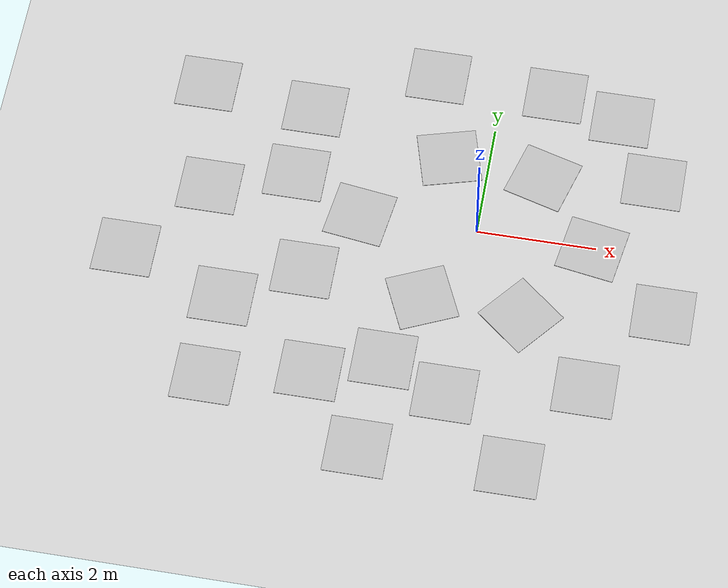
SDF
<sdf version="1.4">
 <world name="default">
  <light name="sun" type="directional">
   <pose>0 0 10 0 -0 0</pose>
   <diffuse>0.8 0.8 0.8 1</diffuse>
   <specular>0.1 0.1 0.1 1</specular>
   <attenuation>
    <range>1000</range>
    <constant>0.9</constant>
    <linear>0.01</linear>
    <quadratic>0.001</quadratic>
   </attenuation>
   <direction>-0.5 0.5 -1</direction>
  </light>
  <model name="ground_plane">
   <static>1</static>
   <link name="link">
    <collision name="collision">
     <geometry><plane><normal>0 0 1</normal><size>100 100</size></plane></geometry>
     <surface><friction><ode><mu>100</mu><mu2>50</mu2></ode></friction></surface>
    </collision>
    <visual name="visual">
     <cast_shadows>0</cast_shadows>
     <geometry><plane><normal>0 0 1</normal><size>100 100</size></plane></geometry>
     <material>
      <script><uri>file://media/materials/scripts/gazebo.material</uri><name>Gazebo/Grey</name></script>
     </material>
    </visual>
   </link>
  </model>
  <gravity>0 0 -9.8</gravity>
  <magnetic_field>6e-06 2.3e-05 -4.2e-05</magnetic_field>
  <atmosphere type="adiabatic"/>
  <physics name="default_physics" default="0" type="ode">
   <max_step_size>0.001</max_step_size>
   <real_time_factor>1</real_time_factor>
   <real_time_update_rate>1000</real_time_update_rate>
  </physics>
  <scene><ambient>0.4 0.4 0.4 1</ambient><background>0.7 0.7 0.7 1</background><shadows>1</shadows></scene>
  <model name="april_tag0_2">
   <static>1</static>
   <link name="plane">
    <visual name="april_tag_texture">
     <geometry><box><size>1 1 0.01</size></box></geometry>
     <material>
      <script>
       <uri>model://april_tag0/materials/scripts</uri>
       <uri>model://april_tag0/materials/textures</uri>
       <name>AprilTag/M0</name>
      </script>
     </material>
    </visual>
   </link>
   <pose>-0.691396 1.3524 0 0 -0 0.271934</pose>
  </model>
  <model name="april_tag0_3">
   <static>1</static>
   <link name="plane">
    <visual name="april_tag_texture">
     <geometry><box><size>1 1 0.01</size></box></geometry>
     <material>
      <script>
       <uri>model://april_tag2/materials/scripts</uri>
       <uri>model://april_tag2/materials/textures</uri>
       <name>AprilTag/M2</name>
      </script>
     </material>
    </visual>
   </link>
   <pose>-0.69808 -1.40039 0 0 -0 0.423253</pose>
  </model>
  <model name="april_tag0_4">
   <static>1</static>
   <link name="plane">
    <visual name="april_tag_texture">
     <geometry><box><size>1 1 0.01</size></box></geometry>
     <material>
      <script>
       <uri>model://april_tag1/materials/scripts</uri>
       <uri>model://april_tag1/materials/textures</uri>
       <name>AprilTag/M1</name>
      </script>
     </material>
    </visual>
   </link>
   <pose>-1.98488 8.2e-05 0 0 0 -0.135816</pose>
  </model>
  <model name="april_tag0_5">
   <static>1</static>
   <link name="plane">
    <visual name="april_tag_texture">
     <geometry><box><size>1 1 0.01</size></box></geometry>
     <material>
      <script>
       <uri>model://april_tag3/materials/scripts</uri>
       <uri>model://april_tag3/materials/textures</uri>
       <name>AprilTag/M3</name>
      </script>
     </material>
    </visual>
   </link>
   <pose>0.954911 -1.46016 0 0 0 -2.2558</pose>
  </model>
  <model name="april_tag0_6">
   <static>1</static>
   <link name="plane">
    <visual name="april_tag_texture">
     <geometry><box><size>1 1 0.01</size></box></geometry>
     <material>
      <script>
       <uri>model://april_tag4/materials/scripts</uri>
       <uri>model://april_tag4/materials/textures</uri>
       <name>AprilTag/M4</name>
      </script>
     </material>
    </visual>
   </link>
   <pose>1.93536 -0.013656 0 0 0 -0.161598</pose>
  </model>
  <model name="april_tag0_7">
   <static>1</static>
   <link name="plane">
    <visual name="april_tag_texture">
     <geometry><box><size>1 1 0.01</size></box></geometry>
     <material>
      <script>
       <uri>model://april_tag5/materials/scripts</uri>
       <uri>model://april_tag5/materials/textures</uri>
       <name>AprilTag/M5</name>
      </script>
     </material>
    </visual>
   </link>
   <pose>0.929773 1.21058 0.027469 0 0 -0.279267</pose>
  </model>
  <model name="april_tag10">
   <static>1</static>
   <link name="plane">
    <visual name="april_tag_texture">
     <geometry><box><size>1 1 0.01</size></box></geometry>
     <material>
      <script>
       <uri>model://april_tag10/materials/scripts</uri>
       <uri>model://april_tag10/materials/textures</uri>
       <name>AprilTag/M10</name>
      </script>
     </material>
    </visual>
   </link>
   <pose>-0.042678 -3.0962 0 0 -0 0</pose>
  </model>
  <model name="april_tag101">
   <static>1</static>
   <link name="plane">
    <visual name="april_tag_texture">
     <geometry><box><size>1 1 0.01</size></box></geometry>
     <material>
      <script>
       <uri>model://april_tag101/materials/scripts</uri>
       <uri>model://april_tag101/materials/textures</uri>
       <name>AprilTag/M101</name>
      </script>
     </material>
    </visual>
   </link>
   <pose>-2.27441 -3.05924 0 0 -0 0</pose>
  </model>
  <model name="april_tag103">
   <static>1</static>
   <link name="plane">
    <visual name="april_tag_texture">
     <geometry><box><size>1 1 0.01</size></box></geometry>
     <material>
      <script>
       <uri>model://april_tag103/materials/scripts</uri>
       <uri>model://april_tag103/materials/textures</uri>
       <name>AprilTag/M103</name>
      </script>
     </material>
    </visual>
   </link>
   <pose>-4.56915 0.130931 0 0 -0 0</pose>
  </model>
  <model name="april_tag102">
   <static>1</static>
   <link name="plane">
    <visual name="april_tag_texture">
     <geometry><box><size>1 1 0.01</size></box></geometry>
     <material>
      <script>
       <uri>model://april_tag102/materials/scripts</uri>
       <uri>model://april_tag102/materials/textures</uri>
       <name>AprilTag/M102</name>
      </script>
     </material>
    </visual>
   </link>
   <pose>-3.94087 -1.92728 0 0 -0 0</pose>
  </model>
  <model name="april_tag104">
   <static>1</static>
   <link name="plane">
    <visual name="april_tag_texture">
     <geometry><box><size>1 1 0.01</size></box></geometry>
     <material>
      <script>
       <uri>model://april_tag104/materials/scripts</uri>
       <uri>model://april_tag104/materials/textures</uri>
       <name>AprilTag/M104</name>
      </script>
     </material>
    </visual>
   </link>
   <pose>-3.09849 1.94551 0 0 -0 0</pose>
  </model>
  <model name="april_tag105">
   <static>1</static>
   <link name="plane">
    <visual name="april_tag_texture">
     <geometry><box><size>1 1 0.01</size></box></geometry>
     <material>
      <script>
       <uri>model://april_tag105/materials/scripts</uri>
       <uri>model://april_tag105/materials/textures</uri>
       <name>AprilTag/M105</name>
      </script>
     </material>
    </visual>
   </link>
   <pose>-1.13749 2.9549 0 0 -0 0</pose>
  </model>
  <model name="april_tag106">
   <static>1</static>
   <link name="plane">
    <visual name="april_tag_texture">
     <geometry><box><size>1 1 0.01</size></box></geometry>
     <material>
      <script>
       <uri>model://april_tag106/materials/scripts</uri>
       <uri>model://april_tag106/materials/textures</uri>
       <name>AprilTag/M106</name>
      </script>
     </material>
    </visual>
   </link>
   <pose>0.892274 2.90115 0 0 -0 0</pose>
  </model>
  <model name="april_tag107">
   <static>1</static>
   <link name="plane">
    <visual name="april_tag_texture">
     <geometry><box><size>1 1 0.01</size></box></geometry>
     <material>
      <script>
       <uri>model://april_tag107/materials/scripts</uri>
       <uri>model://april_tag107/materials/textures</uri>
       <name>AprilTag/M107</name>
      </script>
     </material>
    </visual>
   </link>
   <pose>2.77352 1.45954 0 0 -0 0</pose>
  </model>
  <model name="april_tag108">
   <static>1</static>
   <link name="plane">
    <visual name="april_tag_texture">
     <geometry><box><size>1 1 0.01</size></box></geometry>
     <material>
      <script>
       <uri>model://april_tag108/materials/scripts</uri>
       <uri>model://april_tag108/materials/textures</uri>
       <name>AprilTag/M108</name>
      </script>
     </material>
    </visual>
   </link>
   <pose>3.25496 -1.04797 0 0 -0 0</pose>
  </model>
  <model name="april_tag109">
   <static>1</static>
   <link name="plane">
    <visual name="april_tag_texture">
     <geometry><box><size>1 1 0.01</size></box></geometry>
     <material>
      <script>
       <uri>model://april_tag109/materials/scripts</uri>
       <uri>model://april_tag109/materials/textures</uri>
       <name>AprilTag/M109</name>
      </script>
     </material>
    </visual>
   </link>
   <pose>2.18493 -2.62254 0 0 -0 0</pose>
  </model>
  <model name="april_tag11">
   <static>1</static>
   <link name="plane">
    <visual name="april_tag_texture">
     <geometry><box><size>1 1 0.01</size></box></geometry>
     <material>
      <script>
       <uri>model://april_tag11/materials/scripts</uri>
       <uri>model://april_tag11/materials/textures</uri>
       <name>AprilTag/M11</name>
      </script>
     </material>
    </visual>
   </link>
   <pose>1.19917 -4.25062 0 0 -0 0</pose>
  </model>
  <model name="april_tag110">
   <static>1</static>
   <link name="plane">
    <visual name="april_tag_texture">
     <geometry><box><size>1 1 0.01</size></box></geometry>
     <material>
      <script>
       <uri>model://april_tag110/materials/scripts</uri>
       <uri>model://april_tag110/materials/textures</uri>
       <name>AprilTag/M110</name>
      </script>
     </material>
    </visual>
   </link>
   <pose>-1.27032 -4.3045 0 0 -0 0</pose>
  </model>
  <model name="april_tag111">
   <static>1</static>
   <link name="plane">
    <visual name="april_tag_texture">
     <geometry><box><size>1 1 0.01</size></box></geometry>
     <material>
      <script>
       <uri>model://april_tag111/materials/scripts</uri>
       <uri>model://april_tag111/materials/textures</uri>
       <name>AprilTag/M111</name>
      </script>
     </material>
    </visual>
   </link>
   <pose>-2.70926 -1.19633 0 0 -0 0</pose>
  </model>
  <model name="april_tag112">
   <static>1</static>
   <link name="plane">
    <visual name="april_tag_texture">
     <geometry><box><size>1 1 0.01</size></box></geometry>
     <material>
      <script>
       <uri>model://april_tag112/materials/scripts</uri>
       <uri>model://april_tag112/materials/textures</uri>
       <name>AprilTag/M112</name>
      </script>
     </material>
    </visual>
   </link>
   <pose>-3.94561 -3.41558 0 0 -0 0</pose>
  </model>
  <model name="april_tag113">
   <static>1</static>
   <link name="plane">
    <visual name="april_tag_texture">
     <geometry><box><size>1 1 0.01</size></box></geometry>
     <material>
      <script>
       <uri>model://april_tag113/materials/scripts</uri>
       <uri>model://april_tag113/materials/textures</uri>
       <name>AprilTag/M113</name>
      </script>
     </material>
    </visual>
   </link>
   <pose>-5.71047 -1.28748 0 0 -0 0</pose>
  </model>
  <model name="april_tag113_0">
   <static>1</static>
   <link name="plane">
    <visual name="april_tag_texture">
     <geometry><box><size>1 1 0.01</size></box></geometry>
     <material>
      <script>
       <uri>model://april_tag113/materials/scripts</uri>
       <uri>model://april_tag113/materials/textures</uri>
       <name>AprilTag/M113</name>
      </script>
     </material>
    </visual>
   </link>
   <pose>-4.99684 2.1426 0 0 -0 0</pose>
  </model>
  <model name="april_tag114">
   <static>1</static>
   <link name="plane">
    <visual name="april_tag_texture">
     <geometry><box><size>1 1 0.01</size></box></geometry>
     <material>
      <script>
       <uri>model://april_tag114/materials/scripts</uri>
       <uri>model://april_tag114/materials/textures</uri>
       <name>AprilTag/M114</name>
      </script>
     </material>
    </visual>
   </link>
   <pose>-3.18224 0.628405 0 0 -0 0</pose>
  </model>
  <model name="april_tag115">
   <static>1</static>
   <link name="plane">
    <visual name="april_tag_texture">
     <geometry><box><size>1 1 0.01</size></box></geometry>
     <material>
      <script>
       <uri>model://april_tag115/materials/scripts</uri>
       <uri>model://april_tag115/materials/textures</uri>
       <name>AprilTag/M115</name>
      </script>
     </material>
    </visual>
   </link>
   <pose>2.0761 2.608 0 0 -0 0</pose>
  </model>
  <model name="april_tag117">
   <static>1</static>
   <link name="plane">
    <visual name="april_tag_texture">
     <geometry><box><size>1 1 0.01</size></box></geometry>
     <material>
      <script>
       <uri>model://april_tag117/materials/scripts</uri>
       <uri>model://april_tag117/materials/textures</uri>
       <name>AprilTag/M117</name>
      </script>
     </material>
    </visual>
   </link>
   <pose>-1.13093 -2.64137 0 0 -0 0</pose>
  </model>
  <plugin name="ros_interface_plugin" filename="librotors_gazebo_ros_interface_plugin.so"/>
  <spherical_coordinates>
   <surface_model>EARTH_WGS84</surface_model>
   <latitude_deg>47.3667</latitude_deg>
   <longitude_deg>8.5500</longitude_deg>
   <elevation>500.0</elevation>
   <heading_deg>0</heading_deg>
  </spherical_coordinates>
  <physics type="ode">
   <ode>
    <solver><type>quick</type><iters>1000</iters><sor>1.3</sor></solver>
    <constraints>
     <cfm>0</cfm>
     <erp>0.2</erp>
     <contact_max_correcting_vel>100</contact_max_correcting_vel>
     <contact_surface_layer>0.001</contact_surface_layer>
    </constraints>
   </ode>
   <max_step_size>0.01</max_step_size>
   <real_time_factor>1</real_time_factor>
   <real_time_update_rate>100</real_time_update_rate>
   <gravity>0 0 -9.8</gravity>
  </physics>
 </world>
</sdf>
